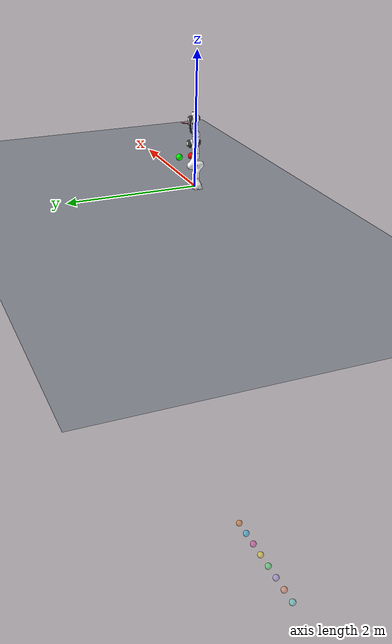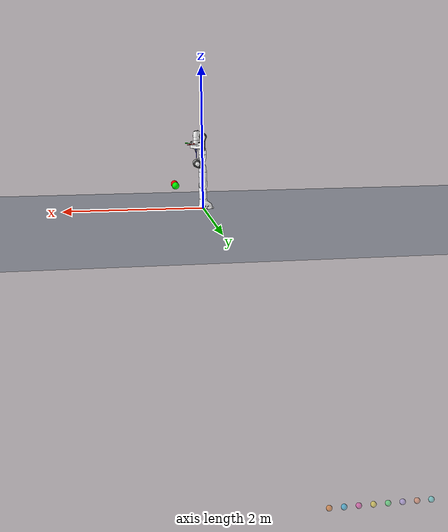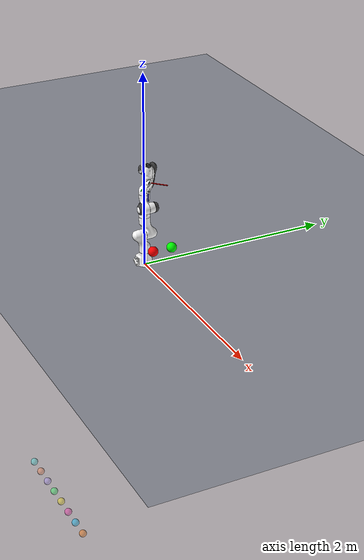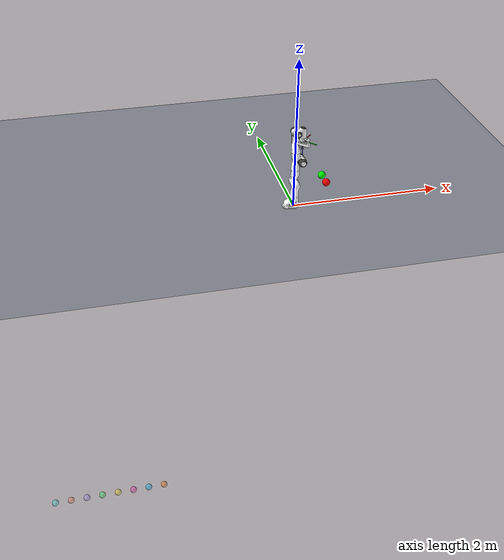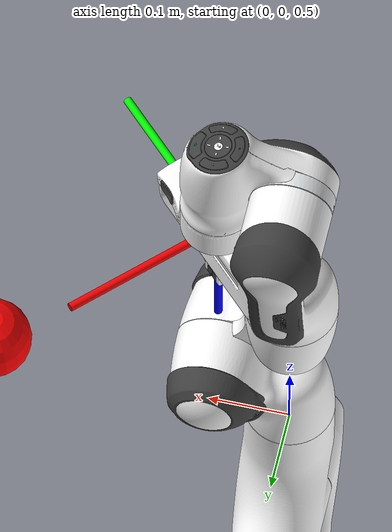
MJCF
<mujoco model="panda scene">
  <include file="panda_tau_ros.xml"/>

  <statistic center="0.3 0 0.4" extent="1"/>

  <visual>
    <headlight diffuse="0.6 0.6 0.6" ambient="0.3 0.3 0.3" specular="0 0 0"/>
    <rgba haze="0.15 0.25 0.35 1"/>
    <global azimuth="120" elevation="-20"/>
    <scale contactwidth="0.04" contactheight="0.02" forcewidth="0.03" com="0.03" framewidth="0.004" framelength="0.08"/>
  </visual>

  <asset>
    <texture type="skybox" builtin="gradient" rgb1="0.3 0.5 0.7" rgb2="0 0 0" width="512" height="3072"/>
    <texture type="2d" name="groundplane" builtin="checker" mark="edge" rgb1="0.2 0.3 0.4" rgb2="0.1 0.2 0.3"
      markrgb="0.8 0.8 0.8" width="300" height="300"/>
    <material name="groundplane" texture="groundplane" texuniform="true" texrepeat="5 5" reflectance="0.2"/>
  </asset>

  <worldbody>
    <light pos="0 0 1.5" dir="0 0 -1" directional="true"/>
    <geom name="floor" size="0 0 0.05" type="plane" material="groundplane"/>
    <body name="world_frame" pos="0 0 0">
      <geom name="X" type="cylinder" size="0.005" fromto="0 0 0 0.3 0 0" rgba="1 0 0 1" contype="0"
            conaffinity="0"/>
      <geom name="Y" type="cylinder" size="0.005" fromto="0 0 0 0 0.3 0" rgba="0 1 0 1" contype="0"
            conaffinity="0"/>
      <geom name="Z" type="cylinder" size="0.005" fromto="0 0 0 0 0 0.3" rgba="0 0 1 1" contype="0"
            conaffinity="0"/>
    </body>

    <!-- BEGIN AUTO-GENERATED STATIC SPHERE OBSTACLES -->
    <!-- Source of truth: /home/cyh/panda_ros2/model/franka_emika_panda/static_sphere_obstacles.xml -->
    <body name="obs1" pos="0.4 -0.1 0.35">
      <geom type="sphere" size="0.05" rgba="1 0 0 1"
            mass="0"
            contype="1" conaffinity="1"/>
    </body>

    <body name="obs2" pos="0.4 0.1 0.35">
      <geom type="sphere" size="0.05" rgba="0 1 0 1"
            mass="0"
            contype="1" conaffinity="1"/>
    </body>
    <!-- END AUTO-GENERATED STATIC SPHERE OBSTACLES -->

    <!-- Dynamic obstacle visualization slots.
         These spheres are driven at runtime by the MuJoCo dynamic obstacle visualization plugin. -->
    <body mocap="true" name="dynamic_obstacle_mocap_0" pos="-2.0 0.0 -5.0">
      <geom name="dynamic_obstacle_geom_0" type="sphere" size="0.05" rgba="1 0.45 0 0.45"
            mass="0" contype="0" conaffinity="0"/>
    </body>
    <body mocap="true" name="dynamic_obstacle_mocap_1" pos="-2.25 0.0 -5.0">
      <geom name="dynamic_obstacle_geom_1" type="sphere" size="0.05" rgba="0 0.75 1 0.45"
            mass="0" contype="0" conaffinity="0"/>
    </body>
    <body mocap="true" name="dynamic_obstacle_mocap_2" pos="-2.5 0.0 -5.0">
      <geom name="dynamic_obstacle_geom_2" type="sphere" size="0.05" rgba="1 0.2 0.7 0.45"
            mass="0" contype="0" conaffinity="0"/>
    </body>
    <body mocap="true" name="dynamic_obstacle_mocap_3" pos="-2.75 0.0 -5.0">
      <geom name="dynamic_obstacle_geom_3" type="sphere" size="0.05" rgba="1 0.9 0.1 0.45"
            mass="0" contype="0" conaffinity="0"/>
    </body>
    <body mocap="true" name="dynamic_obstacle_mocap_4" pos="-3.0 0.0 -5.0">
      <geom name="dynamic_obstacle_geom_4" type="sphere" size="0.05" rgba="0.2 1 0.4 0.45"
            mass="0" contype="0" conaffinity="0"/>
    </body>
    <body mocap="true" name="dynamic_obstacle_mocap_5" pos="-3.25 0.0 -5.0">
      <geom name="dynamic_obstacle_geom_5" type="sphere" size="0.05" rgba="0.7 0.6 1 0.45"
            mass="0" contype="0" conaffinity="0"/>
    </body>
    <body mocap="true" name="dynamic_obstacle_mocap_6" pos="-3.5 0.0 -5.0">
      <geom name="dynamic_obstacle_geom_6" type="sphere" size="0.05" rgba="1 0.55 0.35 0.45"
            mass="0" contype="0" conaffinity="0"/>
    </body>
    <body mocap="true" name="dynamic_obstacle_mocap_7" pos="-3.75 0.0 -5.0">
      <geom name="dynamic_obstacle_geom_7" type="sphere" size="0.05" rgba="0.3 0.9 0.9 0.45"
            mass="0" contype="0" conaffinity="0"/>
    </body>

  </worldbody>

</mujoco>

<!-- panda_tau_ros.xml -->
<mujoco model="panda">
  <compiler angle="radian" meshdir="assets" autolimits="true"/>

  <option integrator="implicitfast"/>

  <default>
    <default class="panda">
      <material specular="0.5" shininess="0.25"/>
      <joint armature="0.1" damping="1" frictionloss="0.0" axis="0 0 1" range="-2.8973 2.8973"/>
      <general dyntype="none" biastype="affine" ctrlrange="-2.8973 2.8973" forcerange="-87 87"/>
      <default class="finger">
        <joint axis="0 1 0" type="slide" range="0 0.04"/>
      </default>

      <default class="visual">
        <geom type="mesh" contype="0" conaffinity="0" group="2"/>
      </default>
      <default class="collision">
        <geom type="mesh" group="3"/>
        <default class="fingertip_pad_collision_1">
          <geom type="box" size="0.0085 0.004 0.0085" pos="0 0.0055 0.0445"/>
        </default>
        <default class="fingertip_pad_collision_2">
          <geom type="box" size="0.003 0.002 0.003" pos="0.0055 0.002 0.05"/>
        </default>
        <default class="fingertip_pad_collision_3">
          <geom type="box" size="0.003 0.002 0.003" pos="-0.0055 0.002 0.05"/>
        </default>
        <default class="fingertip_pad_collision_4">
          <geom type="box" size="0.003 0.002 0.0035" pos="0.0055 0.002 0.0395"/>
        </default>
        <default class="fingertip_pad_collision_5">
          <geom type="box" size="0.003 0.002 0.0035" pos="-0.0055 0.002 0.0395"/>
        </default>
      </default>
    </default>
  </default>

  <asset>
    <material class="panda" name="white" rgba="1 1 1 1"/>
    <material class="panda" name="off_white" rgba="0.901961 0.921569 0.929412 1"/>
    <material class="panda" name="black" rgba="0.25 0.25 0.25 1"/>
    <material class="panda" name="green" rgba="0 1 0 1"/>
    <material class="panda" name="light_blue" rgba="0.039216 0.541176 0.780392 1"/>

    <!-- Collision meshes -->
    <mesh name="link0_c" file="link0.stl"/>
    <mesh name="link1_c" file="link1.stl"/>
    <mesh name="link2_c" file="link2.stl"/>
    <mesh name="link3_c" file="link3.stl"/>
    <mesh name="link4_c" file="link4.stl"/>
    <mesh name="link5_c0" file="link5_collision_0.obj"/>
    <mesh name="link5_c1" file="link5_collision_1.obj"/>
    <mesh name="link5_c2" file="link5_collision_2.obj"/>
    <mesh name="link6_c" file="link6.stl"/>
    <mesh name="link7_c" file="link7.stl"/>
    <mesh name="hand_c" file="hand.stl"/>

    <!-- Visual meshes -->
    <mesh file="link0_0.obj"/>
    <mesh file="link0_1.obj"/>
    <mesh file="link0_2.obj"/>
    <mesh file="link0_3.obj"/>
    <mesh file="link0_4.obj"/>
    <mesh file="link0_5.obj"/>
    <mesh file="link0_7.obj"/>
    <mesh file="link0_8.obj"/>
    <mesh file="link0_9.obj"/>
    <mesh file="link0_10.obj"/>
    <mesh file="link0_11.obj"/>
    <mesh file="link1.obj"/>
    <mesh file="link2.obj"/>
    <mesh file="link3_0.obj"/>
    <mesh file="link3_1.obj"/>
    <mesh file="link3_2.obj"/>
    <mesh file="link3_3.obj"/>
    <mesh file="link4_0.obj"/>
    <mesh file="link4_1.obj"/>
    <mesh file="link4_2.obj"/>
    <mesh file="link4_3.obj"/>
    <mesh file="link5_0.obj"/>
    <mesh file="link5_1.obj"/>
    <mesh file="link5_2.obj"/>
    <mesh file="link6_0.obj"/>
    <mesh file="link6_1.obj"/>
    <mesh file="link6_2.obj"/>
    <mesh file="link6_3.obj"/>
    <mesh file="link6_4.obj"/>
    <mesh file="link6_5.obj"/>
    <mesh file="link6_6.obj"/>
    <mesh file="link6_7.obj"/>
    <mesh file="link6_8.obj"/>
    <mesh file="link6_9.obj"/>
    <mesh file="link6_10.obj"/>
    <mesh file="link6_11.obj"/>
    <mesh file="link6_12.obj"/>
    <mesh file="link6_13.obj"/>
    <mesh file="link6_14.obj"/>
    <mesh file="link6_15.obj"/>
    <mesh file="link6_16.obj"/>
    <mesh file="link7_0.obj"/>
    <mesh file="link7_1.obj"/>
    <mesh file="link7_2.obj"/>
    <mesh file="link7_3.obj"/>
    <mesh file="link7_4.obj"/>
    <mesh file="link7_5.obj"/>
    <mesh file="link7_6.obj"/>
    <mesh file="link7_7.obj"/>
    <mesh file="hand_0.obj"/>
    <mesh file="hand_1.obj"/>
    <mesh file="hand_2.obj"/>
    <mesh file="hand_3.obj"/>
    <mesh file="hand_4.obj"/>
    <mesh file="finger_0.obj"/>
    <mesh file="finger_1.obj"/>
    <texture name="grid" type="2d" builtin="checker" width="512" height="512" rgb1=".1 .2 .3" rgb2=".2 .3 .4"/>
    <material name="grid" texture="grid" texrepeat="1 1" texuniform="true" reflectance=".2"/>

  </asset>

  <worldbody>

    <body name="link0" childclass="panda">
      <inertial mass="0.629769" pos="-0.041018 -0.00014 0.049974"
        fullinertia="0.00315 0.00388 0.004285 8.2904e-7 0.00015 8.2299e-6"/>
      <geom mesh="link0_0" material="off_white" class="visual"/>
      <geom mesh="link0_1" material="black" class="visual"/>
      <geom mesh="link0_2" material="off_white" class="visual"/>
      <geom mesh="link0_3" material="black" class="visual"/>
      <geom mesh="link0_4" material="off_white" class="visual"/>
      <geom mesh="link0_5" material="black" class="visual"/>
      <geom mesh="link0_7" material="white" class="visual"/>
      <geom mesh="link0_8" material="white" class="visual"/>
      <geom mesh="link0_9" material="black" class="visual"/>
      <geom mesh="link0_10" material="off_white" class="visual"/>
      <geom mesh="link0_11" material="white" class="visual"/>
      <geom mesh="link0_c" class="collision"/>
      <body name="link1" pos="0 0 0.333">
        <inertial mass="4.970684" pos="0.003875 0.002081 -0.04762"
          fullinertia="0.70337 0.70661 0.0091170 -0.00013900 0.0067720 0.019169"/>
        <joint name="joint1"/>
        <geom material="white" mesh="link1" class="visual"/>
        <geom mesh="link1_c" class="collision"/>
        <body name="link2" quat="1 -1 0 0">
          <inertial mass="0.646926" pos="-0.003141 -0.02872 0.003495"
            fullinertia="0.0079620 2.8110e-2 2.5995e-2 -3.925e-3 1.0254e-2 7.04e-4"/>
          <joint name="joint2" range="-1.7628 1.7628"/>
          <geom material="white" mesh="link2" class="visual"/>
          <geom mesh="link2_c" class="collision"/>
          <body name="link3" pos="0 -0.316 0" quat="1 1 0 0">
            <joint name="joint3"/>
            <inertial mass="3.228604" pos="2.7518e-2 3.9252e-2 -6.6502e-2"
              fullinertia="3.7242e-2 3.6155e-2 1.083e-2 -4.761e-3 -1.1396e-2 -1.2805e-2"/>
            <geom mesh="link3_0" material="white" class="visual"/>
            <geom mesh="link3_1" material="white" class="visual"/>
            <geom mesh="link3_2" material="white" class="visual"/>
            <geom mesh="link3_3" material="black" class="visual"/>
            <geom mesh="link3_c" class="collision"/>
            <body name="link4" pos="0.0825 0 0" quat="1 1 0 0">
              <inertial mass="3.587895" pos="-5.317e-2 1.04419e-1 2.7454e-2"
                fullinertia="2.5853e-2 1.9552e-2 2.8323e-2 7.796e-3 -1.332e-3 8.641e-3"/>
              <joint name="joint4" range="-3.0718 -0.0698"/>
              <geom mesh="link4_0" material="white" class="visual"/>
              <geom mesh="link4_1" material="white" class="visual"/>
              <geom mesh="link4_2" material="black" class="visual"/>
              <geom mesh="link4_3" material="white" class="visual"/>
              <geom mesh="link4_c" class="collision"/>
              <body name="link5" pos="-0.0825 0.384 0" quat="1 -1 0 0">
                <inertial mass="1.225946" pos="-1.1953e-2 4.1065e-2 -3.8437e-2"
                  fullinertia="3.5549e-2 2.9474e-2 8.627e-3 -2.117e-3 -4.037e-3 2.29e-4"/>
                <joint name="joint5"/>
                <geom mesh="link5_0" material="black" class="visual"/>
                <geom mesh="link5_1" material="white" class="visual"/>
                <geom mesh="link5_2" material="white" class="visual"/>
                <geom mesh="link5_c0" class="collision"/>
                <geom mesh="link5_c1" class="collision"/>
                <geom mesh="link5_c2" class="collision"/>
                <body name="link6" quat="1 1 0 0">
                  <inertial mass="1.666555" pos="6.0149e-2 -1.4117e-2 -1.0517e-2"
                    fullinertia="1.964e-3 4.354e-3 5.433e-3 1.09e-4 -1.158e-3 3.41e-4"/>
                  <joint name="joint6" range="-0.0175 3.7525"/>
                  <geom mesh="link6_0" material="off_white" class="visual"/>
                  <geom mesh="link6_1" material="white" class="visual"/>
                  <geom mesh="link6_2" material="black" class="visual"/>
                  <geom mesh="link6_3" material="white" class="visual"/>
                  <geom mesh="link6_4" material="white" class="visual"/>
                  <geom mesh="link6_5" material="white" class="visual"/>
                  <geom mesh="link6_6" material="white" class="visual"/>
                  <geom mesh="link6_7" material="light_blue" class="visual"/>
                  <geom mesh="link6_8" material="light_blue" class="visual"/>
                  <geom mesh="link6_9" material="black" class="visual"/>
                  <geom mesh="link6_10" material="black" class="visual"/>
                  <geom mesh="link6_11" material="white" class="visual"/>
                  <geom mesh="link6_12" material="green" class="visual"/>
                  <geom mesh="link6_13" material="white" class="visual"/>
                  <geom mesh="link6_14" material="black" class="visual"/>
                  <geom mesh="link6_15" material="black" class="visual"/>
                  <geom mesh="link6_16" material="white" class="visual"/>
                  <geom mesh="link6_c" class="collision"/>
                  <body name="link7" pos="0.088 0 0" quat="1 1 0 0">
                    <inertial mass="7.35522e-01" pos="1.0517e-2 -4.252e-3 6.1597e-2"
                      fullinertia="1.2516e-2 1.0027e-2 4.815e-3 -4.28e-4 -1.196e-3 -7.41e-4"/>
                    <joint name="joint7"/>
                    <geom mesh="link7_0" material="white" class="visual"/>
                    <geom mesh="link7_1" material="black" class="visual"/>
                    <geom mesh="link7_2" material="black" class="visual"/>
                    <geom mesh="link7_3" material="black" class="visual"/>
                    <geom mesh="link7_4" material="black" class="visual"/>
                    <geom mesh="link7_5" material="black" class="visual"/>
                    <geom mesh="link7_6" material="black" class="visual"/>
                    <geom mesh="link7_7" material="white" class="visual"/>
                    <geom mesh="link7_c" class="collision"/>
                    <body name="hand" pos="0 0 0.107" quat="0.9238795 0 0 -0.3826834">
                      <inertial mass="0.73" pos="-0.01 0 0.03" diaginertia="0.001 0.0025 0.0017"/>
                      <geom mesh="hand_0" material="off_white" class="visual"/>
                      <geom mesh="hand_1" material="black" class="visual"/>
                      <geom mesh="hand_2" material="black" class="visual"/>
                      <geom mesh="hand_3" material="white" class="visual"/>
                      <geom mesh="hand_4" material="off_white" class="visual"/>
                      <geom mesh="hand_c" class="collision"/>

                      <!-- refer to the panda_grasptarget in panda.urdf in panda_gym -->
                        <body name="ee_center_body" pos="0 0 0.105" quat="1 0 0 0">
                            <site name='ee_center_site' size="0.01" group="3"/>
                        </body>
                        <body name="ee_center_quat" pos="0 0 0">
                          <geom name="ee_x" type="cylinder" size="0.005" fromto="0 0 0 0.2 0 0" rgba="1 0 0 1" contype="0"
                                conaffinity="0"/>
                          <geom name="ee_y" type="cylinder" size="0.005" fromto="0 0 0 0 0.2 0" rgba="0 1 0 1" contype="0"
                                conaffinity="0"/>
                          <geom name="ee_z" type="cylinder" size="0.005" fromto="0 0 0 0 0 0.2" rgba="0 0 1 1" contype="0"
                                conaffinity="0"/>
                        </body>

                      <body name="left_finger" pos="0 0 0.0584">
                        <inertial mass="0.015" pos="0 0 0" diaginertia="2.375e-6 2.375e-6 7.5e-7"/>
                        <joint name="finger_joint1" class="finger"/>
                        <geom mesh="finger_0" material="off_white" class="visual"/>
                        <geom mesh="finger_1" material="black" class="visual"/>
                        <geom mesh="finger_0" class="collision"/>
                        <geom class="fingertip_pad_collision_1"/>
                        <geom class="fingertip_pad_collision_2"/>
                        <geom class="fingertip_pad_collision_3"/>
                        <geom class="fingertip_pad_collision_4"/>
                        <geom class="fingertip_pad_collision_5"/>
                      </body>
                      <body name="right_finger" pos="0 0 0.0584" quat="0 0 0 1">
                        <inertial mass="0.015" pos="0 0 0" diaginertia="2.375e-6 2.375e-6 7.5e-7"/>
                        <joint name="finger_joint2" class="finger"/>
                        <geom mesh="finger_0" material="off_white" class="visual"/>
                        <geom mesh="finger_1" material="black" class="visual"/>
                        <geom mesh="finger_0" class="collision"/>
                        <geom class="fingertip_pad_collision_1"/>
                        <geom class="fingertip_pad_collision_2"/>
                        <geom class="fingertip_pad_collision_3"/>
                        <geom class="fingertip_pad_collision_4"/>
                        <geom class="fingertip_pad_collision_5"/>
                      </body>
                    </body>
                  </body>
                </body>
              </body>
            </body>
          </body>
        </body>
      </body>
    </body>
  </worldbody>

  <tendon>
    <fixed name="split">
      <joint joint="finger_joint1" coef="0.5"/>
      <joint joint="finger_joint2" coef="0.5"/>
    </fixed>
  </tendon>

  <equality>
    <joint joint1="finger_joint1" joint2="finger_joint2" solimp="0.95 0.99 0.001" solref="0.005 1"/>
  </equality>

  <actuator>
    <motor name="joint1" joint="joint1" ctrlrange="-100 100"/>
    <motor name="joint2" joint="joint2" ctrlrange="-100 100"/>
    <motor name="joint3" joint="joint3" ctrlrange="-100 100"/>
    <motor name="joint4" joint="joint4" ctrlrange="-100 100"/>
    <motor name="joint5" joint="joint5" ctrlrange="-100 100"/>
    <motor name="joint6" joint="joint6" ctrlrange="-100 100"/>
    <motor name="joint7" joint="joint7" ctrlrange="-100 100"/>

    <!-- 保留抓手控制 -->
  </actuator>

  <keyframe>
    <key name="home" qpos="0.008 -1.382 -0.008 -3.072 -0.007 1.615 0.792" ctrl="0 0 0 -0.0 0 0 -0.0"/>
  </keyframe>

  <contact>
    <exclude body1="link0" body2="link1"/>
  </contact>

</mujoco>
